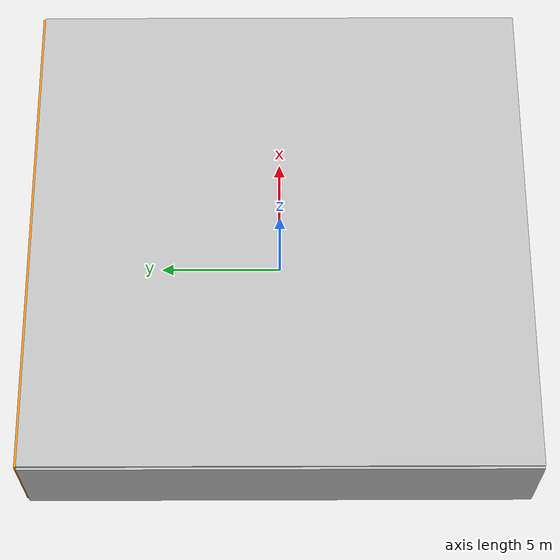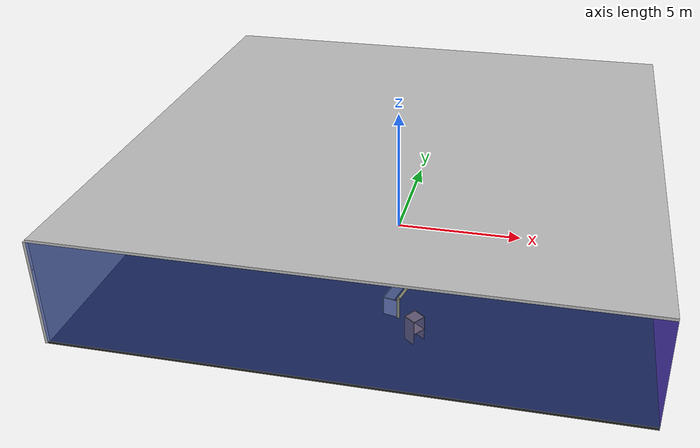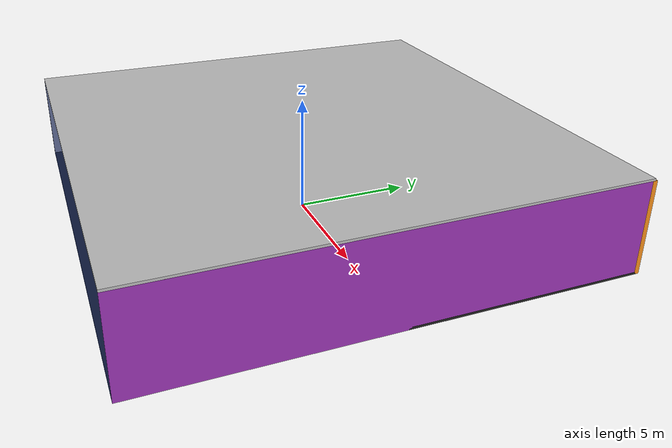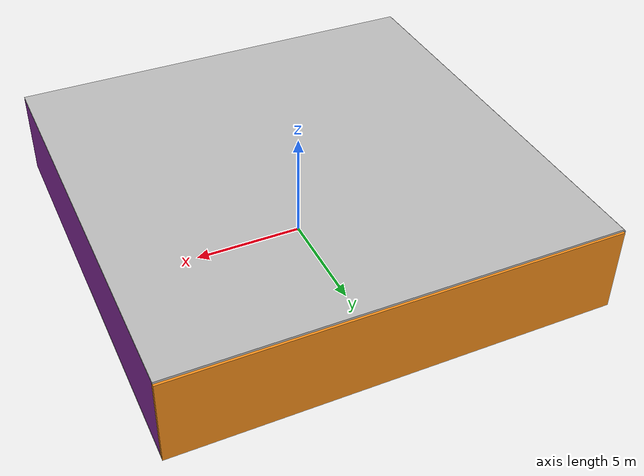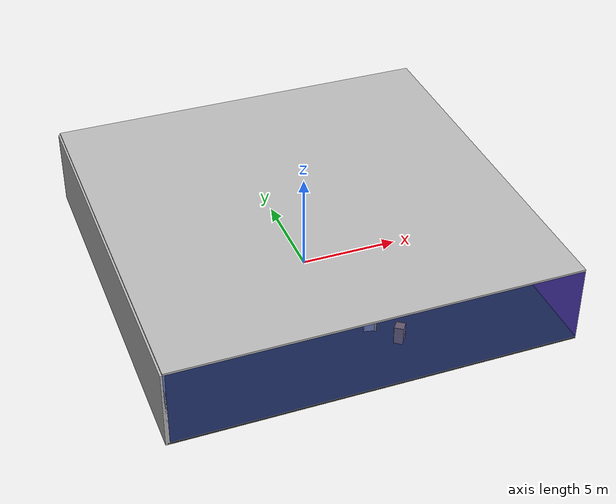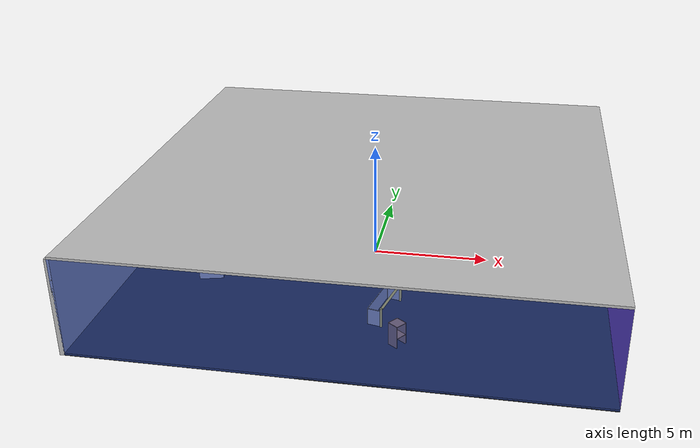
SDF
<sdf version="1.4">
 <world name="default">
  <physics type="ode">
   <max_step_size>0.001</max_step_size>
   <real_time_factor>1</real_time_factor>
   <real_time_update_rate>1000</real_time_update_rate>
   <gravity>0 0 -9.8</gravity>
  </physics>
  <scene><ambient>0.4 0.4 0.4 1</ambient><background>0.7 0.7 0.7 1</background><shadows>1</shadows></scene>
  <model name="Surrounding">
   <static>1</static>
   <link name="Ceiling">
    <collision name="Ceiling_Collision"><geometry><box><size>20 20 0.1</size></box></geometry></collision>
    <visual name="Ceiling_Visual">
     <geometry><box><size>20 20 0.1</size></box></geometry>
     <material>
      <script><uri>file://media/materials/scripts/gazebo.material</uri><name>Gazebo/CloudySky</name></script>
     </material>
    </visual>
    <pose>0 0 4.05 0 0 0</pose>
   </link>
   <link name="Wall_South">
    <collision name="Wall_South_Collision">
     <geometry><box><size>20 0 4</size></box></geometry>
     <pose>0 0 2 0 -0 0</pose>
    </collision>
    <visual name="Wall_South_Visual">
     <pose>0 0 2 0 -0 0</pose>
     <geometry><box><size>20 0 4</size></box></geometry>
     <material>
      <script><uri>file://media/materials/scripts/gazebo.material</uri><name>Gazebo/BlueTransparent</name></script>
     </material>
    </visual>
    <velocity_decay><linear>0</linear><angular>0</angular></velocity_decay>
    <pose>0 -10 0 0 -0 0</pose>
   </link>
   <link name="Wall_East">
    <collision name="Wall_21_Collision">
     <geometry><box><size>20 0 4</size></box></geometry>
     <pose>0 0 2 0 -0 0</pose>
    </collision>
    <visual name="Wall_21_Visual">
     <pose>0 0 2 0 -0 0</pose>
     <geometry><box><size>20 0 4</size></box></geometry>
     <material>
      <script><uri>file://media/materials/scripts/gazebo.material</uri><name>Gazebo/PurpleGlow</name></script>
     </material>
    </visual>
    <velocity_decay><linear>0</linear><angular>0</angular></velocity_decay>
    <pose>10 0 0 0 -0 1.5708</pose>
   </link>
   <link name="Wall_North">
    <collision name="Wall_22_Collision">
     <geometry><box><size>20 0.2 4</size></box></geometry>
     <pose>0 0 2 0 -0 0</pose>
    </collision>
    <visual name="Wall_22_Visual">
     <pose>0 0 2 0 -0 0</pose>
     <geometry><box><size>20 0.2 4</size></box></geometry>
     <material>
      <script><uri>file://media/materials/scripts/gazebo.material</uri><name>Gazebo/Orange</name></script>
     </material>
    </visual>
    <velocity_decay><linear>0</linear><angular>0</angular></velocity_decay>
    <pose>0 10 0 0 -0 0</pose>
   </link>
   <link name="Wall_West">
    <collision name="Wall_23_Collision">
     <geometry><box><size>20 0.2 4</size></box></geometry>
     <pose>0 0 2 0 -0 0</pose>
    </collision>
    <visual name="Wall_23_Visual">
     <pose>0 0 2 0 -0 0</pose>
     <geometry><box><size>20 0.2 4</size></box></geometry>
     <material>
      <script><uri>file://media/materials/scripts/gazebo.material</uri><name>Gazebo/PioneerBody</name></script>
     </material>
    </visual>
    <velocity_decay><linear>0</linear><angular>0</angular></velocity_decay>
    <pose>-10 0 0 0 0 -1.5708</pose>
   </link>
   <link name="Ground_link">
    <collision name="collision">
     <pose>0 0 .05 0 -0 0</pose>
     <geometry><box><size>20 20 0.1</size></box></geometry>
    </collision>
    <visual name="visual">
     <pose>0 0 .05 0 -0 0</pose>
     <geometry><box><size>20 20 0.1</size></box></geometry>
     <material>
      <script><uri>file://media/materials/scripts/gazebo.material</uri><name>Gazebo/FlatBlack</name></script>
     </material>
    </visual>
   </link>
   <static>1</static>
  </model>
  <spherical_coordinates>
   <surface_model>EARTH_WGS84</surface_model>
   <latitude_deg>0</latitude_deg>
   <longitude_deg>0</longitude_deg>
   <elevation>0</elevation>
   <heading_deg>0</heading_deg>
  </spherical_coordinates>
  <light name="lightball_0" type="diffuse">
   <diffuse>0.8 0.8 0.8 1</diffuse>
   <specular>0.2 0.2 0.2 1</specular>
   <attenuation>
    <range>100</range>
    <constant>0.7</constant>
    <linear>0.01</linear>
    <quadratic>0.001</quadratic>
   </attenuation>
   <direction>-0.5 0.1 -0.9</direction>
   <pose>1.85006227838 5.77090727142 2.80214961781 0 0 0</pose>
  </light>
  <light name="lightball_1" type="diffuse">
   <diffuse>0.8 0.8 0.8 1</diffuse>
   <specular>0.2 0.2 0.2 1</specular>
   <attenuation>
    <range>100</range>
    <constant>0.7</constant>
    <linear>0.01</linear>
    <quadratic>0.001</quadratic>
   </attenuation>
   <direction>-0.5 0.1 -0.9</direction>
   <pose>-3.93138241603 -0.799444613894 2.3755251497 0 0 0</pose>
  </light>
  <light name="lightball_2" type="diffuse">
   <diffuse>0.8 0.8 0.8 1</diffuse>
   <specular>0.2 0.2 0.2 1</specular>
   <attenuation>
    <range>100</range>
    <constant>0.7</constant>
    <linear>0.01</linear>
    <quadratic>0.001</quadratic>
   </attenuation>
   <direction>-0.5 0.1 -0.9</direction>
   <pose>6.73834393022 -6.28112091955 3.32724909621 0 0 0</pose>
  </light>
  <light name="lightball_3" type="diffuse">
   <diffuse>0.8 0.8 0.8 1</diffuse>
   <specular>0.2 0.2 0.2 1</specular>
   <attenuation>
    <range>100</range>
    <constant>0.7</constant>
    <linear>0.01</linear>
    <quadratic>0.001</quadratic>
   </attenuation>
   <direction>-0.5 0.1 -0.9</direction>
   <pose>-9.7061916829 3.89415179879 0.814860686932 0 0 0</pose>
  </light>
  <light name="lightball_4" type="diffuse">
   <diffuse>0.8 0.8 0.8 1</diffuse>
   <specular>0.2 0.2 0.2 1</specular>
   <attenuation>
    <range>100</range>
    <constant>0.7</constant>
    <linear>0.01</linear>
    <quadratic>0.001</quadratic>
   </attenuation>
   <direction>-0.5 0.1 -0.9</direction>
   <pose>4.17998149775 6.58834417383 2.90483125257 0 0 0</pose>
  </light>
  <light name="lightball_5" type="diffuse">
   <diffuse>0.8 0.8 0.8 1</diffuse>
   <specular>0.2 0.2 0.2 1</specular>
   <attenuation>
    <range>100</range>
    <constant>0.7</constant>
    <linear>0.01</linear>
    <quadratic>0.001</quadratic>
   </attenuation>
   <direction>-0.5 0.1 -0.9</direction>
   <pose>1.6076059169 2.61457614272 2.65342146437 0 0 0</pose>
  </light>
  <light name="lightball_6" type="diffuse">
   <diffuse>0.8 0.8 0.8 1</diffuse>
   <specular>0.2 0.2 0.2 1</specular>
   <attenuation>
    <range>100</range>
    <constant>0.7</constant>
    <linear>0.01</linear>
    <quadratic>0.001</quadratic>
   </attenuation>
   <direction>-0.5 0.1 -0.9</direction>
   <pose>1.17972899631 -6.12246107767 1.29814256178 0 0 0</pose>
  </light>
  <include>
   <uri>model://textured_shapes</uri>
   <pose>-6.88571508485 -1.81745835958 0 0 0 0.252449486599</pose>
  </include>
  <include><uri>model://table</uri><pose>-1.83963227449 2.07292064066 0 0 0 2.82282710822</pose></include>
  <include><uri>model://cabinet</uri><pose>2.06692885003 -7.34130362778 0 0 0 2.48985331062</pose></include>
  <include>
   <uri>model://robocup_3Dsim_goal</uri>
   <pose>1.51188060018 -5.25441209492 0 0 0 2.92285406055</pose>
  </include>
  <include><uri>model://cabinet</uri><pose>5.18643307313 4.98544518499 0 0 0 0.158459857159</pose></include>
  <include>
   <uri>model://robocup_3Dsim_goal</uri>
   <pose>7.76959311328 -1.03174901355 0 0 0 1.64318146154</pose>
  </include>
  <include><uri>model://cabinet</uri><pose>7.09743500568 7.71896067466 0 0 0 2.1456984067</pose></include>
 </world>
</sdf>

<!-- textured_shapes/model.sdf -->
<sdf version="1.6">
  <model name="textured_shapes">
    <pose>0 0 0.5 0 0 0</pose>
    <link name="box">
      <pose>0 -1.5 0 0 0 0</pose>
      <collision name="collision">
        <geometry>
          <box>
            <size>1 1 1</size>
          </box>
        </geometry>
      </collision>
      <visual name="visual">
        <geometry>
          <box>
            <size>1 1 1</size>
          </box>
        </geometry>
        <material>
          <script>
            <uri>model://../model_source/models/textured_shapes/materials/scripts</uri>
            <uri>model://../model_source/models/textured_shapes/materials/textures</uri>
            <name>TexturedShape/Squares</name>
          </script>
        </material>
      </visual>
    </link>
    <link name="sphere">
      <collision name="collision">
        <geometry>
          <sphere>
            <radius>0.5</radius>
          </sphere>
        </geometry>
      </collision>
      <visual name="visual">
        <geometry>
          <sphere>
            <radius>0.5</radius>
          </sphere>
        </geometry>
        <material>
          <script>
            <uri>model://../model_source/models/textured_shapes/materials/scripts</uri>
            <uri>model://../model_source/models/textured_shapes/materials/textures</uri>
            <name>TexturedShape/Squares</name>
          </script>
        </material>
      </visual>
    </link>
    <link name="cylinder">
      <pose>0 1.5 0 0 0 0</pose>
      <collision name="collision">
        <geometry>
          <cylinder>
            <radius>0.5</radius>
            <length>1</length>
          </cylinder>
        </geometry>
      </collision>
      <visual name="visual">
        <geometry>
          <cylinder>
            <radius>0.5</radius>
            <length>1</length>
          </cylinder>
        </geometry>
        <material>
          <script>
            <uri>model://../model_source/models/textured_shapes/materials/scripts</uri>
            <uri>model://../model_source/models/textured_shapes/materials/textures</uri>
            <name>TexturedShape/Squares</name>
          </script>
        </material>
      </visual>
    </link>
  </model>
</sdf>

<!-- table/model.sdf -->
<sdf version="1.5">
  <model name="table">
    <static>true</static>
    <link name="link">
      <collision name="surface">
        <pose>0 0 1.0 0 0 0</pose>
        <geometry>
          <box>
            <size>1.5 0.8 0.03</size>
          </box>
        </geometry>
        <surface>
          <friction>
            <ode>
              <mu>0.6</mu>
              <mu2>0.6</mu2>
            </ode>
          </friction>
        </surface>
      </collision>
      <visual name="visual1">
        <pose>0 0 1.0 0 0 0</pose>
        <geometry>
          <box>
            <size>1.5 0.8 0.03</size>
          </box>
        </geometry>
        <material>
          <script>
            <uri>model://media/materials/scripts/gazebo.material</uri>
            <name>Gazebo/Wood</name>
          </script>
        </material>
      </visual>
      <collision name="front_left_leg">
        <pose>0.68 0.38 0.5 0 0 0</pose>
        <geometry>
          <cylinder>
            <radius>0.02</radius>
            <length>1.0</length>
          </cylinder>
        </geometry>
      </collision>
      <visual name="front_left_leg">
        <pose>0.68 0.38 0.5 0 0 0</pose>
        <geometry>
          <cylinder>
            <radius>0.02</radius>
            <length>1.0</length>
          </cylinder>
        </geometry>
        <material>
          <script>
            <uri>model://media/materials/scripts/gazebo.material</uri>
            <name>Gazebo/Grey</name>
          </script>
        </material>
      </visual>
      <collision name="front_right_leg">
        <pose>0.68 -0.38 0.5 0 0 0</pose>
        <geometry>
          <cylinder>
            <radius>0.02</radius>
            <length>1.0</length>
          </cylinder>
        </geometry>
      </collision>
      <visual name="front_right_leg">
        <pose>0.68 -0.38 0.5 0 0 0</pose>
        <geometry>
          <cylinder>
            <radius>0.02</radius>
            <length>1.0</length>
          </cylinder>
        </geometry>
        <material>
          <script>
            <uri>model://media/materials/scripts/gazebo.material</uri>
            <name>Gazebo/Grey</name>
          </script>
        </material>
      </visual>
      <collision name="back_right_leg">
        <pose>-0.68 -0.38 0.5 0 0 0</pose>
        <geometry>
          <cylinder>
            <radius>0.02</radius>
            <length>1.0</length>
          </cylinder>
        </geometry>
      </collision>
      <visual name="back_right_leg">
        <pose>-0.68 -0.38 0.5 0 0 0</pose>
        <geometry>
          <cylinder>
            <radius>0.02</radius>
            <length>1.0</length>
          </cylinder>
        </geometry>
        <material>
          <script>
            <uri>model://media/materials/scripts/gazebo.material</uri>
            <name>Gazebo/Grey</name>
          </script>
        </material>
      </visual>
      <collision name="back_left_leg">
        <pose>-0.68 0.38 0.5 0 0 0</pose>
        <geometry>
          <cylinder>
            <radius>0.02</radius>
            <length>1.0</length>
          </cylinder>
        </geometry>
      </collision>
      <visual name="back_left_leg">
        <pose>-0.68 0.38 0.5 0 0 0</pose>
        <geometry>
          <cylinder>
            <radius>0.02</radius>
            <length>1.0</length>
          </cylinder>
        </geometry>
        <material>
          <script>
            <uri>model://media/materials/scripts/gazebo.material</uri>
            <name>Gazebo/Grey</name>
          </script>
        </material>
      </visual>
    </link>
  </model>
</sdf>

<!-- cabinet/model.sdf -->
<sdf version="1.5">
  <model name="cabinet">
    <static>true</static>
    <link name="cabinet_bottom_plate">
      <inertial>
        <pose>0 0 -1 0 0 0</pose>
        <inertia>
          <ixx>2.050000</ixx>
          <ixy>0</ixy>
          <ixz>0</ixz>
          <iyy>2.050000</iyy>
          <iyz>0</iyz>
          <izz>2.050000</izz>
        </inertia>
        <mass>25.000000</mass>
      </inertial>
      <collision name="cabinet_bottom_plate_geom">
        <pose>0 0 0.010000 0 0 0</pose>
        <geometry>
          <box>
            <size>0.450000 0.450000 0.020000</size>
          </box>
        </geometry>
      </collision>
      <visual name="cabinet_bottom_plate_geom_visual">
        <pose>0 0 0.010000 0 0 0</pose>
        <geometry>
          <box>
            <size>0.450000 0.450000 0.020000</size>
          </box>
        </geometry>
        <material>
          <script>
            <uri>model://media/materials/scripts/gazebo.material</uri>
            <name>Gazebo/Wood</name>
          </script>
        </material>
      </visual>
      <collision name="cabinet_bottom_plate_geom_cabinet_back_plate">
        <pose>0.235000 0 0.510000 0 0 0</pose>
        <geometry>
          <box>
            <size>0.020000 0.450000 1.020000</size>
          </box>
        </geometry>
      </collision>
      <visual name="cabinet_bottom_plate_geom_cabinet_back_plate_visual">
        <pose>0.235000 0 0.510000 0 0 0</pose>
        <geometry>
          <box>
            <size>0.020000 0.450000 1.020000</size>
          </box>
        </geometry>
        <material>
          <script>
            <uri>model://media/materials/scripts/gazebo.material</uri>
            <name>Gazebo/Wood</name>
          </script>
        </material>
      </visual>
      <collision name="cabinet_bottom_plate_geom_cabinet_left_plate">
        <pose>0 0.235000 0.510000 0 0 0</pose>
        <geometry>
          <box>
            <size>0.450000 0.020000 1.020000</size>
          </box>
        </geometry>
      </collision>
      <visual name="cabinet_bottom_plate_geom_cabinet_left_plate_visual">
        <pose>0 0.235000 0.510000 0 0 0</pose>
        <geometry>
          <box>
            <size>0.450000 0.020000 1.020000</size>
          </box>
        </geometry>
        <material>
          <script>
            <uri>model://media/materials/scripts/gazebo.material</uri>
            <name>Gazebo/Wood</name>
          </script>
        </material>
      </visual>
      <collision name="cabinet_bottom_plate_geom_cabinet_middle_plate">
        <pose>0 0 0.510000 0 0 0</pose>
        <geometry>
          <box>
            <size>0.450000 0.450000 0.020000</size>
          </box>
        </geometry>
      </collision>
      <visual name="cabinet_bottom_plate_geom_cabinet_middle_plate_visual">
        <pose>0 0 0.510000 0 0 0</pose>
        <geometry>
          <box>
            <size>0.450000 0.450000 0.020000</size>
          </box>
        </geometry>
        <material>
          <script>
            <uri>model://media/materials/scripts/gazebo.material</uri>
            <name>Gazebo/Wood</name>
          </script>
        </material>
      </visual>
      <collision name="cabinet_bottom_plate_geom_cabinet_right_plate">
        <pose>0 -0.235000 0.510000 0 0 0</pose>
        <geometry>
          <box>
            <size>0.450000 0.020000 1.020000</size>
          </box>
        </geometry>
      </collision>
      <visual name="cabinet_bottom_plate_geom_cabinet_right_plate_visual">
        <pose>0 -0.235000 0.510000 0 0 0</pose>
        <geometry>
          <box>
            <size>0.450000 0.020000 1.020000</size>
          </box>
        </geometry>
        <material>
          <script>
            <uri>model://media/materials/scripts/gazebo.material</uri>
            <name>Gazebo/Wood</name>
          </script>
        </material>
      </visual>
      <collision name="cabinet_bottom_plate_geom_cabinet_top_plate">
        <pose>0 0 1.010000 0 0 0</pose>
        <geometry>
          <box>
            <size>0.450000 0.450000 0.020000</size>
          </box>
        </geometry>
      </collision>
      <visual name="cabinet_bottom_plate_geom_cabinet_top_plate_visual">
        <pose>0 0 1.010000 0 0 0</pose>
        <geometry>
          <box>
            <size>0.450000 0.450000 0.020000</size>
          </box>
        </geometry>
        <material>
          <script>
            <uri>model://media/materials/scripts/gazebo.material</uri>
            <name>Gazebo/Wood</name>
          </script>
        </material>
      </visual>
    </link>
  </model>
</sdf>

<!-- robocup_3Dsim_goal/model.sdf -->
<sdf version="1.5">
  <model name="robocup_3d_goal">
    <static>true</static>
    <link name="left_post">
      <pose>0 1.05 0.45 0 0 0</pose>
      <collision name="collision">
        <geometry>
          <cylinder>
            <radius>0.05</radius>
            <length>0.9</length>
          </cylinder>
        </geometry>
      </collision>
      <visual name="visual">
        <geometry>
          <cylinder>
            <radius>0.05</radius>
            <length>0.9</length>
          </cylinder>
        </geometry>
        <material>
          <script>
            <uri>file://media/materials/scripts/gazebo.material</uri>
            <name>Gazebo/ZincYellow</name>
          </script>
        </material>
      </visual>
    </link>
    <link name="left_support_horiz_lower">
      <pose>0.30 1.05 0.01 0 0 0</pose>
      <collision name="collision">
        <geometry>
          <box>
            <size>0.50 0.02 0.02</size>
          </box>
        </geometry>
      </collision>
      <visual name="visual">
        <geometry>
          <box>
            <size>0.50 0.02 0.02</size>
          </box>
        </geometry>
        <material>
          <script>
            <uri>file://media/materials/scripts/gazebo.material</uri>
            <name>Gazebo/White</name>
          </script>
        </material>
      </visual>
    </link>
    <link name="left_support_horiz_upper">
      <pose>0.30 1.05 0.79 0 0 0</pose>
      <collision name="collision">
        <geometry>
          <box>
            <size>0.50 0.02 0.02</size>
          </box>
        </geometry>
      </collision>
      <visual name="visual">
        <geometry>
          <box>
            <size>0.50 0.02 0.02</size>
          </box>
        </geometry>
        <material>
          <script>
            <uri>file://media/materials/scripts/gazebo.material</uri>
            <name>Gazebo/White</name>
          </script>
        </material>
      </visual>
    </link>
    <link name="left_support_vertical">
      <pose>0.56 1.05 0.4 0 1.5708 0</pose>
      <collision name="collision">
        <geometry>
          <box>
            <size>0.80 0.02 0.02</size>
          </box>
        </geometry>
      </collision>
      <visual name="visual">
        <geometry>
          <box>
            <size>0.80 0.02 0.02</size>
          </box>
        </geometry>
        <material>
          <script>
            <uri>file://media/materials/scripts/gazebo.material</uri>
            <name>Gazebo/White</name>
          </script>
        </material>
      </visual>
    </link>
    <link name="right_support_horiz_lower">
      <pose>0.30 -1.05 0.01 0 0 0</pose>
      <collision name="collision">
        <geometry>
          <box>
            <size>0.50 0.02 0.02</size>
          </box>
        </geometry>
      </collision>
      <visual name="visual">
        <geometry>
          <box>
            <size>0.50 0.02 0.02</size>
          </box>
        </geometry>
        <material>
          <script>
            <uri>file://media/materials/scripts/gazebo.material</uri>
            <name>Gazebo/White</name>
          </script>
        </material>
      </visual>
    </link>
    <link name="right_support_horiz_upper">
      <pose>0.30 -1.05 0.79 0 0 0</pose>
      <collision name="collision">
        <geometry>
          <box>
            <size>0.50 0.02 0.02</size>
          </box>
        </geometry>
      </collision>
      <visual name="visual">
        <geometry>
          <box>
            <size>0.50 0.02 0.02</size>
          </box>
        </geometry>
        <material>
          <script>
            <uri>file://media/materials/scripts/gazebo.material</uri>
            <name>Gazebo/White</name>
          </script>
        </material>
      </visual>
    </link>
    <link name="right_support_vertical">
      <pose>0.56 -1.05 0.4 0 1.5708 0</pose>
      <collision name="collision">
        <geometry>
          <box>
            <size>0.80 0.02 0.02</size>
          </box>
        </geometry>
      </collision>
      <visual name="visual">
        <geometry>
          <box>
            <size>0.80 0.02 0.02</size>
          </box>
        </geometry>
        <material>
          <script>
            <uri>file://media/materials/scripts/gazebo.material</uri>
            <name>Gazebo/White</name>
          </script>
        </material>
      </visual>
    </link>
    <link name="center_support_horiz_lower">
      <pose>0.56 0 0.01 0 1.5708 0</pose>
      <collision name="collision">
        <geometry>
          <box>
            <size>0.02 2.08 0.02</size>
          </box>
        </geometry>
      </collision>
      <visual name="visual">
        <geometry>
          <box>
            <size>0.02 2.08 0.02</size>
          </box>
        </geometry>
        <material>
          <script>
            <uri>file://media/materials/scripts/gazebo.material</uri>
            <name>Gazebo/White</name>
          </script>
        </material>
      </visual>
    </link>
    <link name="center_support_horiz_upper">
      <pose>0.56 0 0.79 0 1.5708 0</pose>
      <collision name="collision">
        <geometry>
          <box>
            <size>0.02 2.08 0.02</size>
          </box>
        </geometry>
      </collision>
      <visual name="visual">
        <geometry>
          <box>
            <size>0.02 2.08 0.02</size>
          </box>
        </geometry>
        <material>
          <script>
            <uri>file://media/materials/scripts/gazebo.material</uri>
            <name>Gazebo/White</name>
          </script>
        </material>
      </visual>
    </link>
    <link name="right_post">
      <pose>0 -1.05 0.45 0 0 0</pose>
      <collision name="collision">
        <geometry>
          <cylinder>
            <radius>0.05</radius>
            <length>0.9</length>
          </cylinder>
        </geometry>
      </collision>
      <visual name="visual">
        <geometry>
          <cylinder>
            <radius>0.05</radius>
            <length>0.9</length>
          </cylinder>
        </geometry>
        <material>
          <script>
            <uri>file://media/materials/scripts/gazebo.material</uri>
            <name>Gazebo/ZincYellow</name>
          </script>
        </material>
      </visual>
    </link>
    <link name="crossbar">
      <pose>0 0 0.85 1.57 1.57 0</pose>
      <collision name="collision">
        <geometry>
          <cylinder>
            <radius>0.05</radius>
            <length>2.0</length>
          </cylinder>
        </geometry>
      </collision>
      <visual name="visual">
        <geometry>
          <cylinder>
            <radius>0.05</radius>
            <length>2.0</length>
          </cylinder>
        </geometry>
        <material>
          <script>
            <uri>file://media/materials/scripts/gazebo.material</uri>
            <name>Gazebo/ZincYellow</name>
          </script>
        </material>
      </visual>
    </link>
    <link name="center_net">
      <pose>0.56 0 0.40 0 0 0</pose>
      <collision name="collision">
        <geometry>
          <box>
            <size>0.01 2.1 0.80</size>
          </box>
        </geometry>
      </collision>
      <visual name="visual">
        <geometry>
          <box>
            <size>0.01 2.1 0.80</size>
          </box>
        </geometry>
        <material>
          <script>
            <uri>model://../model_source/models/robocup09_spl_field/materials/scripts/</uri>
            <uri>model://../model_source/models/robocup09_spl_field/materials/textures/</uri>
            <name>RoboCup/Net</name>
          </script>
        </material>
      </visual>
    </link>
    <link name="left_net">
      <pose>0.30 1.05 0.40 0 0 0</pose>
      <collision name="collision">
        <geometry>
          <box>
            <size>0.50 0.01 0.76</size>
          </box>
        </geometry>
      </collision>
      <visual name="visual">
        <geometry>
          <box>
            <size>0.50 0.01 0.76</size>
          </box>
        </geometry>
        <material>
          <script>
            <uri>model://../model_source/models/robocup09_spl_field/materials/scripts/</uri>
            <uri>model://../model_source/models/robocup09_spl_field/materials/textures/</uri>
            <name>RoboCup/Net</name>
          </script>
        </material>
      </visual>
    </link>
    <link name="right_net">
      <pose>0.30 -1.05 0.40 0 0 0</pose>
      <collision name="collision">
        <geometry>
          <box>
            <size>0.50 0.01 0.76</size>
          </box>
        </geometry>
      </collision>
      <visual name="visual">
        <geometry>
          <box>
            <size>0.50 0.01 0.76</size>
          </box>
        </geometry>
        <material>
          <script>
            <uri>model://../model_source/models/robocup09_spl_field/materials/scripts/</uri>
            <uri>model://../model_source/models/robocup09_spl_field/materials/textures/</uri>
            <name>RoboCup/Net</name>
          </script>
        </material>
      </visual>
    </link>
  </model>
</sdf>
